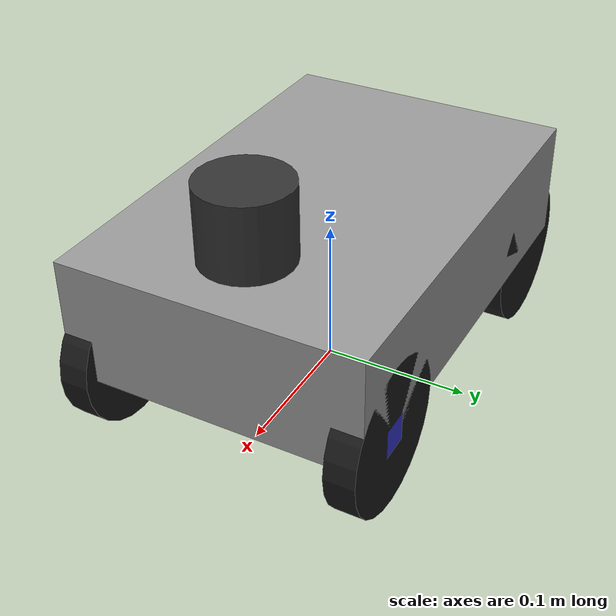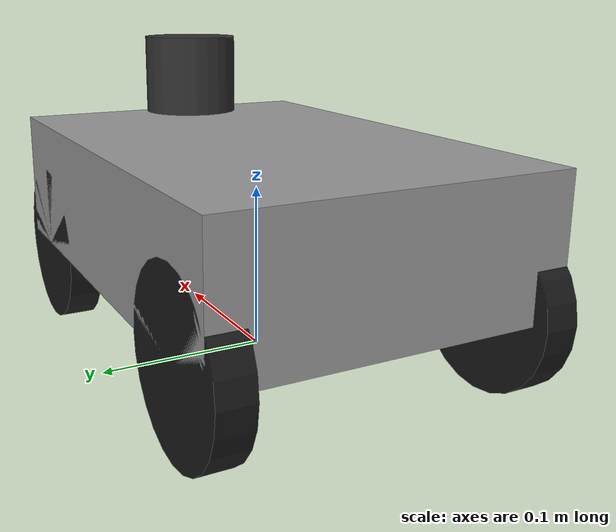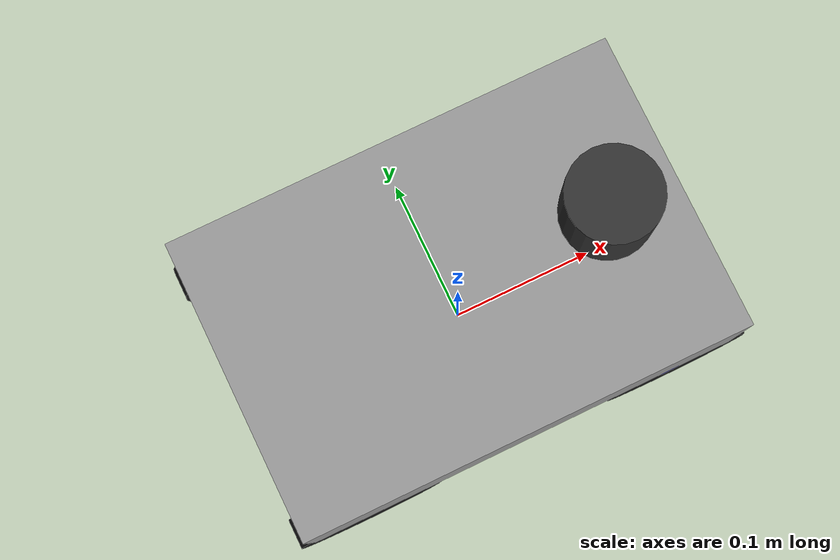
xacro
<?xml version="1.0"?>
<robot xmlns:xacro="http://www.ros.org/wiki/xacro" name="minidog">

  <!-- Units: meters, kilograms, radians -->
  <!-- xacro already defines pi -->

  <!-- Simple dimensions -->
  <xacro:property name="chassis_length" value="0.30"/>
  <xacro:property name="chassis_width"  value="0.20"/>
  <xacro:property name="chassis_height" value="0.08"/>

  <xacro:property name="wheel_radius" value="0.05"/>
  <xacro:property name="wheel_width"  value="0.02"/>

  <!-- Geometry -->
  <xacro:property name="wheelbase" value="0.22"/>   <!-- distance between front and rear wheel centers -->
  <xacro:property name="track"     value="0.18"/>   <!-- distance between left and right wheel centers -->

  <!-- Place base_link at the chassis COM, at z = wheel_radius + chassis_half_height so wheels touch ground. -->
  <xacro:property name="base_z" value="${wheel_radius + chassis_height/2.0}"/>
  <xacro:property name="wheel_z" value="${wheel_radius - base_z}"/>

  <xacro:macro name="inertial_box" params="mass x y z">
    <inertial>
      <origin xyz="0 0 0" rpy="0 0 0"/>
      <mass value="${mass}"/>
      <!-- Solid box inertia -->
      <inertia
        ixx="${mass/12.0 * (y*y + z*z)}"
        iyy="${mass/12.0 * (x*x + z*z)}"
        izz="${mass/12.0 * (x*x + y*y)}"
        ixy="0" ixz="0" iyz="0"/>
    </inertial>
  </xacro:macro>

  <xacro:macro name="inertial_cylinder_y" params="mass radius length">
    <inertial>
      <origin xyz="0 0 0" rpy="0 0 0"/>
      <mass value="${mass}"/>
      <!-- Cylinder aligned with Y axis (wheel spin axis). Approximated by swapping principal axes. -->
      <inertia
        ixx="${mass/12.0 * (3*radius*radius + length*length)}"
        iyy="${0.5*mass*radius*radius}"
        izz="${mass/12.0 * (3*radius*radius + length*length)}"
        ixy="0" ixz="0" iyz="0"/>
    </inertial>
  </xacro:macro>

  <!-- Frames -->
  <link name="base_footprint"/>

  <link name="base_link">
    <visual>
      <origin xyz="0 0 0" rpy="0 0 0"/>
      <geometry>
        <box size="${chassis_length} ${chassis_width} ${chassis_height}"/>
      </geometry>
      <material name="Grey">
        <color rgba="0.6 0.6 0.6 1.0"/>
      </material>
    </visual>
    <collision>
      <origin xyz="0 0 0" rpy="0 0 0"/>
      <geometry>
        <box size="${chassis_length} ${chassis_width} ${chassis_height}"/>
      </geometry>
    </collision>
    <xacro:inertial_box mass="3.0" x="${chassis_length}" y="${chassis_width}" z="${chassis_height}"/>
  </link>

  <joint name="base_footprint_joint" type="fixed">
    <parent link="base_footprint"/>
    <child link="base_link"/>
    <origin xyz="0 0 ${base_z}" rpy="0 0 0"/>
  </joint>

  <!-- Rear wheels (drive) -->
  <link name="rear_left_wheel_link">
    <visual>
      <origin xyz="0 0 0" rpy="${pi/2} 0 0"/>
      <geometry>
        <cylinder radius="${wheel_radius}" length="${wheel_width}"/>
      </geometry>
      <material name="Black">
        <color rgba="0.1 0.1 0.1 1.0"/>
      </material>
    </visual>
    <collision>
      <origin xyz="0 0 0" rpy="${pi/2} 0 0"/>
      <geometry>
        <cylinder radius="${wheel_radius}" length="${wheel_width}"/>
      </geometry>
    </collision>
    <xacro:inertial_cylinder_y mass="0.25" radius="${wheel_radius}" length="${wheel_width}"/>
  </link>

  <joint name="rear_left_wheel_joint" type="continuous">
    <parent link="base_link"/>
    <child link="rear_left_wheel_link"/>
    <origin xyz="${-wheelbase/2} ${track/2} ${wheel_z}" rpy="0 0 0"/>
    <axis xyz="0 1 0"/>
  </joint>

  <link name="rear_right_wheel_link">
    <visual>
      <origin xyz="0 0 0" rpy="${pi/2} 0 0"/>
      <geometry>
        <cylinder radius="${wheel_radius}" length="${wheel_width}"/>
      </geometry>
      <material name="Black"/>
    </visual>
    <collision>
      <origin xyz="0 0 0" rpy="${pi/2} 0 0"/>
      <geometry>
        <cylinder radius="${wheel_radius}" length="${wheel_width}"/>
      </geometry>
    </collision>
    <xacro:inertial_cylinder_y mass="0.25" radius="${wheel_radius}" length="${wheel_width}"/>
  </link>

  <joint name="rear_right_wheel_joint" type="continuous">
    <parent link="base_link"/>
    <child link="rear_right_wheel_link"/>
    <origin xyz="${-wheelbase/2} ${-track/2} ${wheel_z}" rpy="0 0 0"/>
    <axis xyz="0 1 0"/>
  </joint>

  <!-- Front steering knuckles -->
  <link name="front_left_steer_link">
    <visual>
      <origin xyz="0 0 0" rpy="0 0 0"/>
      <geometry>
        <box size="0.02 0.02 0.02"/>
      </geometry>
      <material name="Blue">
        <color rgba="0.2 0.2 0.8 1.0"/>
      </material>
    </visual>
    <collision>
      <origin xyz="0 0 0" rpy="0 0 0"/>
      <geometry>
        <box size="0.02 0.02 0.02"/>
      </geometry>
    </collision>
    <xacro:inertial_box mass="0.05" x="0.02" y="0.02" z="0.02"/>
  </link>

  <joint name="front_left_steer_joint" type="revolute">
    <parent link="base_link"/>
    <child link="front_left_steer_link"/>
    <origin xyz="${wheelbase/2} ${track/2} ${wheel_z}" rpy="0 0 0"/>
    <axis xyz="0 0 1"/>
    <limit lower="-0.6" upper="0.6" effort="5.0" velocity="2.0"/>
  </joint>

  <link name="front_right_steer_link">
    <visual>
      <origin xyz="0 0 0" rpy="0 0 0"/>
      <geometry>
        <box size="0.02 0.02 0.02"/>
      </geometry>
      <material name="Blue"/>
    </visual>
    <collision>
      <origin xyz="0 0 0" rpy="0 0 0"/>
      <geometry>
        <box size="0.02 0.02 0.02"/>
      </geometry>
    </collision>
    <xacro:inertial_box mass="0.05" x="0.02" y="0.02" z="0.02"/>
  </link>

  <joint name="front_right_steer_joint" type="revolute">
    <parent link="base_link"/>
    <child link="front_right_steer_link"/>
    <origin xyz="${wheelbase/2} ${-track/2} ${wheel_z}" rpy="0 0 0"/>
    <axis xyz="0 0 1"/>
    <limit lower="-0.6" upper="0.6" effort="5.0" velocity="2.0"/>
  </joint>

  <!-- Front wheels (not driven here; can be driven too if desired) -->
  <link name="front_left_wheel_link">
    <visual>
      <origin xyz="0 0 0" rpy="${pi/2} 0 0"/>
      <geometry>
        <cylinder radius="${wheel_radius}" length="${wheel_width}"/>
      </geometry>
      <material name="Black"/>
    </visual>
    <collision>
      <origin xyz="0 0 0" rpy="${pi/2} 0 0"/>
      <geometry>
        <cylinder radius="${wheel_radius}" length="${wheel_width}"/>
      </geometry>
    </collision>
    <xacro:inertial_cylinder_y mass="0.25" radius="${wheel_radius}" length="${wheel_width}"/>
  </link>

  <joint name="front_left_wheel_joint" type="continuous">
    <parent link="front_left_steer_link"/>
    <child link="front_left_wheel_link"/>
    <origin xyz="0 0 0" rpy="0 0 0"/>
    <axis xyz="0 1 0"/>
  </joint>

  <link name="front_right_wheel_link">
    <visual>
      <origin xyz="0 0 0" rpy="${pi/2} 0 0"/>
      <geometry>
        <cylinder radius="${wheel_radius}" length="${wheel_width}"/>
      </geometry>
      <material name="Black"/>
    </visual>
    <collision>
      <origin xyz="0 0 0" rpy="${pi/2} 0 0"/>
      <geometry>
        <cylinder radius="${wheel_radius}" length="${wheel_width}"/>
      </geometry>
    </collision>
    <xacro:inertial_cylinder_y mass="0.25" radius="${wheel_radius}" length="${wheel_width}"/>
  </link>

  <joint name="front_right_wheel_joint" type="continuous">
    <parent link="front_right_steer_link"/>
    <child link="front_right_wheel_link"/>
    <origin xyz="0 0 0" rpy="0 0 0"/>
    <axis xyz="0 1 0"/>
  </joint>

  <!-- 3D lidar ("Ouster-like") mounted on top -->
  <link name="lidar_link">
    <visual>
      <origin xyz="0 0 0" rpy="0 0 0"/>
      <geometry>
        <cylinder radius="0.03" length="0.05"/>
      </geometry>
      <material name="DarkGrey">
        <color rgba="0.2 0.2 0.2 1.0"/>
      </material>
    </visual>
    <collision>
      <origin xyz="0 0 0" rpy="0 0 0"/>
      <geometry>
        <cylinder radius="0.03" length="0.05"/>
      </geometry>
    </collision>
    <xacro:inertial_cylinder_y mass="0.2" radius="0.03" length="0.05"/>
  </link>

  <joint name="lidar_joint" type="fixed">
    <parent link="base_link"/>
    <child link="lidar_link"/>
    <!-- forward, centered, above chassis -->
    <origin xyz="0.10 0.0 0.07" rpy="0 0 0"/>
  </joint>

  <!-- Gazebo Sim (Fortress / ign-gazebo6) system plugin configuration.
       This is consumed by sdformat_urdf when the model is spawned into Gazebo. -->
  <gazebo>
    <plugin
      filename="ignition-gazebo-ackermann-steering-system"
      name="gz::sim::systems::AckermannSteering">
      <left_joint>rear_left_wheel_joint</left_joint>
      <right_joint>rear_right_wheel_joint</right_joint>
      <left_steering_joint>front_left_steer_joint</left_steering_joint>
      <right_steering_joint>front_right_steer_joint</right_steering_joint>
      <kingpin_width>${track}</kingpin_width>
      <steering_limit>0.6</steering_limit>
      <wheel_base>${wheelbase}</wheel_base>
      <wheel_separation>${track}</wheel_separation>
      <wheel_radius>${wheel_radius}</wheel_radius>
      <min_velocity>-2</min_velocity>
      <max_velocity>2</max_velocity>
      <min_acceleration>-3</min_acceleration>
      <max_acceleration>3</max_acceleration>
    </plugin>

    <plugin
      filename="ignition-gazebo-joint-state-publisher-system"
      name="gz::sim::systems::JointStatePublisher" />

    <plugin
      filename="ignition-gazebo-odometry-publisher-system"
      name="ignition::gazebo::systems::OdometryPublisher">
      <dimensions>3</dimensions>
      <odom_frame>odom</odom_frame>
      <robot_base_frame>base_footprint</robot_base_frame>
      <odom_publish_frequency>50</odom_publish_frequency>
    </plugin>
  </gazebo>

  <!-- Lidar sensor definition for Gazebo. Output is a PointCloudPacked topic,
       bridged to ROS PointCloud2, then converted to LaserScan for slam_toolbox. -->
  <gazebo reference="lidar_link">
    <sensor name="ouster" type="gpu_lidar">
      <topic>/minidog/ouster/points</topic>
      <update_rate>10</update_rate>
      <lidar>
        <scan>
          <horizontal>
            <samples>1024</samples>
            <resolution>1</resolution>
            <min_angle>-3.14159</min_angle>
            <max_angle>3.14159</max_angle>
          </horizontal>
          <vertical>
            <samples>32</samples>
            <resolution>1</resolution>
            <min_angle>-0.261799</min_angle>
            <max_angle>0.261799</max_angle>
          </vertical>
        </scan>
        <range>
          <min>0.1</min>
          <max>20.0</max>
          <resolution>0.01</resolution>
        </range>
      </lidar>
      <alwaysOn>1</alwaysOn>
      <visualize>true</visualize>
    </sensor>
  </gazebo>

</robot>
